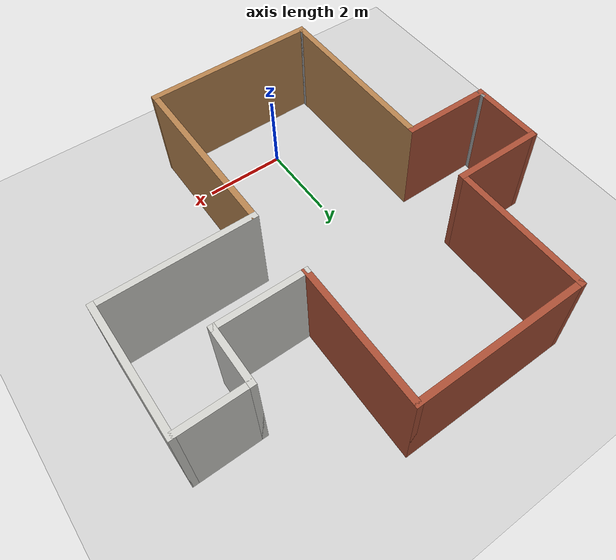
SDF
<sdf version="1.7">
 <world name="default">
  <light name="sun" type="directional">
   <pose>0 0 10 0 -0 0</pose>
   <diffuse>0.8 0.8 0.8 1</diffuse>
   <specular>0.2 0.2 0.2 1</specular>
   <attenuation>
    <range>1000</range>
    <constant>0.9</constant>
    <linear>0.01</linear>
    <quadratic>0.001</quadratic>
   </attenuation>
   <direction>-0.5 0.1 -0.9</direction>
   <spot><inner_angle>0</inner_angle><outer_angle>0</outer_angle><falloff>0</falloff></spot>
  </light>
  <model name="ground_plane">
   <static>1</static>
   <link name="link">
    <collision name="collision">
     <geometry><plane><normal>0 0 1</normal><size>100 100</size></plane></geometry>
     <surface><friction><ode><mu>100</mu><mu2>50</mu2></ode></friction></surface>
    </collision>
    <visual name="visual">
     <cast_shadows>0</cast_shadows>
     <geometry><plane><normal>0 0 1</normal><size>100 100</size></plane></geometry>
     <material>
      <script><uri>file://media/materials/scripts/gazebo.material</uri><name>Gazebo/Grey</name></script>
     </material>
    </visual>
   </link>
  </model>
  <gravity>0 0 -9.8</gravity>
  <magnetic_field>6e-06 2.3e-05 -4.2e-05</magnetic_field>
  <atmosphere type="adiabatic"/>
  <physics type="ode">
   <max_step_size>0.001</max_step_size>
   <real_time_factor>1</real_time_factor>
   <real_time_update_rate>1000</real_time_update_rate>
  </physics>
  <scene><ambient>0.4 0.4 0.4 1</ambient><background>0.7 0.7 0.7 1</background><shadows>1</shadows></scene>
  <audio><device>default</device></audio>
  <spherical_coordinates>
   <surface_model>EARTH_WGS84</surface_model>
   <latitude_deg>0</latitude_deg>
   <longitude_deg>0</longitude_deg>
   <elevation>0</elevation>
   <heading_deg>0</heading_deg>
  </spherical_coordinates>
  <model name="dawes_rd_top">
   <pose>0.990768 3.34197 0 0 -0 0</pose>
   <link name="Wall_12">
    <collision name="Wall_12_Collision">
     <geometry><box><size>4.25 0.15 2.5</size></box></geometry>
     <pose>0 0 1.25 0 -0 0</pose>
    </collision>
    <visual name="Wall_12_Visual">
     <pose>0 0 1.25 0 -0 0</pose>
     <geometry><box><size>4.25 0.15 2.5</size></box></geometry>
     <material>
      <script><uri>file://media/materials/scripts/gazebo.material</uri><name>Gazebo/Bricks</name></script>
      <ambient>1 1 1 1</ambient>
     </material>
     <meta><layer>0</layer></meta>
    </visual>
    <pose>-0.8 4.75044 0 0 -0 0</pose>
   </link>
   <link name="Wall_13">
    <collision name="Wall_13_Collision">
     <geometry><box><size>3.5 0.15 2.5</size></box></geometry>
     <pose>0 0 1.25 0 -0 0</pose>
    </collision>
    <visual name="Wall_13_Visual">
     <pose>0 0 1.25 0 -0 0</pose>
     <geometry><box><size>3.5 0.15 2.5</size></box></geometry>
     <material>
      <script><uri>file://media/materials/scripts/gazebo.material</uri><name>Gazebo/Bricks</name></script>
      <ambient>1 1 1 1</ambient>
     </material>
     <meta><layer>0</layer></meta>
    </visual>
    <pose>1.25 3.07544 0 0 -0 -1.5708</pose>
   </link>
   <link name="Wall_14">
    <collision name="Wall_14_Collision">
     <geometry><box><size>2.25 0.15 2.5</size></box></geometry>
     <pose>0 0 1.25 0 -0 0</pose>
    </collision>
    <visual name="Wall_14_Visual">
     <pose>0 0 1.25 0 -0 0</pose>
     <geometry><box><size>2.25 0.15 2.5</size></box></geometry>
     <material>
      <script><uri>file://media/materials/scripts/gazebo.material</uri><name>Gazebo/CeilingTiled</name></script>
      <ambient>1 1 1 1</ambient>
     </material>
     <meta><layer>0</layer></meta>
    </visual>
    <pose>2.3 1.40044 0 0 -0 0</pose>
   </link>
   <link name="Wall_15">
    <collision name="Wall_15_Collision">
     <geometry><box><size>1.5 0.15 2.5</size></box></geometry>
     <pose>0 0 1.25 0 -0 0</pose>
    </collision>
    <visual name="Wall_15_Visual">
     <pose>0 0 1.25 0 -0 0</pose>
     <geometry><box><size>1.5 0.15 2.5</size></box></geometry>
     <material>
      <script><uri>file://media/materials/scripts/gazebo.material</uri><name>Gazebo/CeilingTiled</name></script>
      <ambient>1 1 1 1</ambient>
     </material>
     <meta><layer>0</layer></meta>
    </visual>
    <pose>3.35 2.07544 0 0 -0 1.5708</pose>
   </link>
   <link name="Wall_16">
    <collision name="Wall_16_Collision">
     <geometry><box><size>1.75 0.15 2.5</size></box></geometry>
     <pose>0 0 1.25 0 -0 0</pose>
    </collision>
    <visual name="Wall_16_Visual">
     <pose>0 0 1.25 0 -0 0</pose>
     <geometry><box><size>1.75 0.15 2.5</size></box></geometry>
     <material>
      <script><uri>file://media/materials/scripts/gazebo.material</uri><name>Gazebo/CeilingTiled</name></script>
      <ambient>1 1 1 1</ambient>
     </material>
     <meta><layer>0</layer></meta>
    </visual>
    <pose>4.15 2.75044 0 0 -0 0</pose>
   </link>
   <link name="Wall_17">
    <collision name="Wall_17_Collision">
     <geometry><box><size>3.25 0.15 2.5</size></box></geometry>
     <pose>0 0 1.25 0 -0 0</pose>
    </collision>
    <visual name="Wall_17_Visual">
     <pose>0 0 1.25 0 -0 0</pose>
     <geometry><box><size>3.25 0.15 2.5</size></box></geometry>
     <material>
      <script><uri>file://media/materials/scripts/gazebo.material</uri><name>Gazebo/CeilingTiled</name></script>
      <ambient>1 1 1 1</ambient>
     </material>
     <meta><layer>0</layer></meta>
    </visual>
    <pose>4.95 1.20044 0 0 -0 -1.5708</pose>
   </link>
   <link name="Wall_18">
    <collision name="Wall_18_Collision">
     <geometry><box><size>3.75 0.15 2.5</size></box></geometry>
     <pose>0 0 1.25 0 -0 0</pose>
    </collision>
    <visual name="Wall_18_Visual">
     <pose>0 0 1.25 0 -0 0</pose>
     <geometry><box><size>3.75 0.15 2.5</size></box></geometry>
     <material>
      <script><uri>file://media/materials/scripts/gazebo.material</uri><name>Gazebo/CeilingTiled</name></script>
      <ambient>1 1 1 1</ambient>
     </material>
     <meta><layer>0</layer></meta>
    </visual>
    <pose>3.15 -0.349557 0 0 -0 3.14159</pose>
   </link>
   <link name="Wall_19">
    <collision name="Wall_19_Collision">
     <geometry><box><size>4.5 0.15 2.5</size></box></geometry>
     <pose>0 0 1.25 0 -0 0</pose>
    </collision>
    <visual name="Wall_19_Visual">
     <pose>0 0 1.25 0 -0 0</pose>
     <geometry><box><size>4.5 0.15 2.5</size></box></geometry>
     <material>
      <script><uri>file://media/materials/scripts/gazebo.material</uri><name>Gazebo/Wood</name></script>
      <ambient>1 1 1 1</ambient>
     </material>
     <meta><layer>0</layer></meta>
    </visual>
    <pose>1.35 -2.52456 0 0 -0 -1.5708</pose>
   </link>
   <link name="Wall_23">
    <collision name="Wall_23_Collision">
     <geometry><box><size>3.5 0.15 2.5</size></box></geometry>
     <pose>0 0 1.25 0 -0 0</pose>
    </collision>
    <visual name="Wall_23_Visual">
     <pose>0 0 1.25 0 -0 0</pose>
     <geometry><box><size>3.5 0.15 2.5</size></box></geometry>
     <material>
      <script><uri>file://media/materials/scripts/gazebo.material</uri><name>Gazebo/Bricks</name></script>
      <ambient>1 1 1 1</ambient>
     </material>
     <meta><layer>0</layer></meta>
    </visual>
    <pose>-2.85 3.07544 0 0 -0 -1.5708</pose>
   </link>
   <link name="Wall_24">
    <collision name="Wall_24_Collision">
     <geometry><box><size>2.25 0.15 2.5</size></box></geometry>
     <pose>0 0 1.25 0 -0 0</pose>
    </collision>
    <visual name="Wall_24_Visual">
     <pose>0 0 1.25 0 -0 0</pose>
     <geometry><box><size>2.25 0.15 2.5</size></box></geometry>
     <material>
      <script><uri>file://media/materials/scripts/gazebo.material</uri><name>Gazebo/Bricks</name></script>
      <ambient>1 1 1 1</ambient>
     </material>
     <meta><layer>0</layer></meta>
    </visual>
    <pose>-3.9 1.40044 0 0 -0 3.14159</pose>
   </link>
   <link name="Wall_25">
    <collision name="Wall_25_Collision">
     <geometry><box><size>1.75 0.15 2.5</size></box></geometry>
     <pose>0 0 1.25 0 -0 0</pose>
    </collision>
    <visual name="Wall_25_Visual">
     <pose>0 0 1.25 0 -0 0</pose>
     <geometry><box><size>1.75 0.15 2.5</size></box></geometry>
     <material>
      <script><uri>file://media/materials/scripts/gazebo.material</uri><name>Gazebo/Bricks</name></script>
      <ambient>1 1 1 1</ambient>
     </material>
     <meta><layer>0</layer></meta>
    </visual>
    <pose>-4.95 0.600444 0 0 -0 -1.5708</pose>
   </link>
   <link name="Wall_26">
    <collision name="Wall_26_Collision">
     <geometry><box><size>0.25 0.15 2.5</size></box></geometry>
     <pose>0 0 1.25 0 -0 0</pose>
    </collision>
    <visual name="Wall_26_Visual">
     <pose>0 0 1.25 0 -0 0</pose>
     <geometry><box><size>0.25 0.15 2.5</size></box></geometry>
     <material>
      <script><uri>file://media/materials/scripts/gazebo.material</uri><name>Gazebo/Grey</name></script>
      <ambient>1 1 1 1</ambient>
     </material>
     <meta><layer>0</layer></meta>
    </visual>
    <pose>-4.95 -0.249556 0 0 -0 -1.5708</pose>
   </link>
   <link name="Wall_27">
    <collision name="Wall_27_Collision">
     <geometry><box><size>2.25 0.15 2.5</size></box></geometry>
     <pose>0 0 1.25 0 -0 0</pose>
    </collision>
    <visual name="Wall_27_Visual">
     <pose>0 0 1.25 0 -0 0</pose>
     <geometry><box><size>2.25 0.15 2.5</size></box></geometry>
     <material>
      <script><uri>file://media/materials/scripts/gazebo.material</uri><name>Gazebo/Bricks</name></script>
      <ambient>1 1 1 1</ambient>
     </material>
     <meta><layer>0</layer></meta>
    </visual>
    <pose>-3.9 -0.299557 0 0 -0 0</pose>
   </link>
   <link name="Wall_28">
    <collision name="Wall_28_Collision">
     <geometry><box><size>4.5 0.15 2.5</size></box></geometry>
     <pose>0 0 1.25 0 -0 0</pose>
    </collision>
    <visual name="Wall_28_Visual">
     <pose>0 0 1.25 0 -0 0</pose>
     <geometry><box><size>4.5 0.15 2.5</size></box></geometry>
     <material>
      <script><uri>file://media/materials/scripts/gazebo.material</uri><name>Gazebo/Wood</name></script>
      <ambient>1 1 1 1</ambient>
     </material>
     <meta><layer>0</layer></meta>
    </visual>
    <pose>-2.85 -2.47456 0 0 -0 -1.5708</pose>
   </link>
   <link name="Wall_29">
    <collision name="Wall_29_Collision">
     <geometry><box><size>0.15 0.15 2.5</size></box></geometry>
     <pose>0 0 1.25 0 -0 0</pose>
    </collision>
    <visual name="Wall_29_Visual">
     <pose>0 0 1.25 0 -0 0</pose>
     <geometry><box><size>0.15 0.15 2.5</size></box></geometry>
     <material>
      <script><uri>file://media/materials/scripts/gazebo.material</uri><name>Gazebo/Wood</name></script>
      <ambient>1 1 1 1</ambient>
     </material>
     <meta><layer>0</layer></meta>
    </visual>
    <pose>-2.85 -4.64956 0 0 -0 0</pose>
   </link>
   <link name="Wall_30">
    <collision name="Wall_30_Collision">
     <geometry><box><size>0.25 0.15 2.5</size></box></geometry>
     <pose>0 0 1.25 0 -0 0</pose>
    </collision>
    <visual name="Wall_30_Visual">
     <pose>0 0 1.25 0 -0 0</pose>
     <geometry><box><size>0.25 0.15 2.5</size></box></geometry>
     <material>
      <script><uri>file://media/materials/scripts/gazebo.material</uri><name>Gazebo/Grey</name></script>
      <ambient>1 1 1 1</ambient>
     </material>
     <meta><layer>0</layer></meta>
    </visual>
    <pose>-2.85 -4.69956 0 0 -0 -1.5708</pose>
   </link>
   <link name="Wall_31">
    <collision name="Wall_31_Collision">
     <geometry><box><size>4.3503 0.15 2.5</size></box></geometry>
     <pose>0 0 1.25 0 -0 0</pose>
    </collision>
    <visual name="Wall_31_Visual">
     <pose>0 0 1.25 0 -0 0</pose>
     <geometry><box><size>4.3503 0.15 2.5</size></box></geometry>
     <material>
      <script><uri>file://media/materials/scripts/gazebo.material</uri><name>Gazebo/Wood</name></script>
      <ambient>1 1 1 1</ambient>
     </material>
     <meta><layer>0</layer></meta>
    </visual>
    <pose>-0.75 -4.72456 0 0 -0 0.011904</pose>
   </link>
   <static>1</static>
  </model>
 </world>
</sdf>
